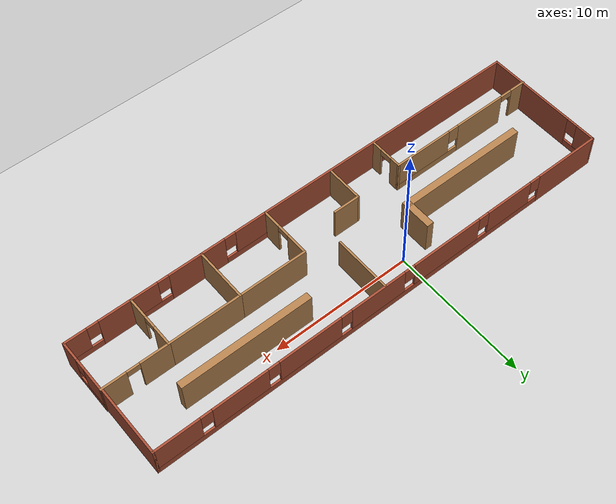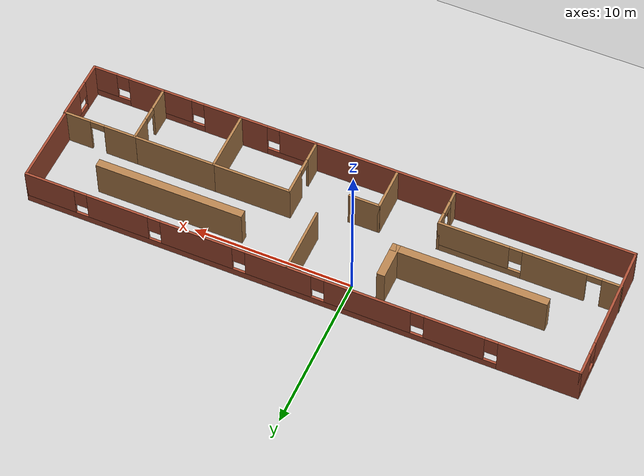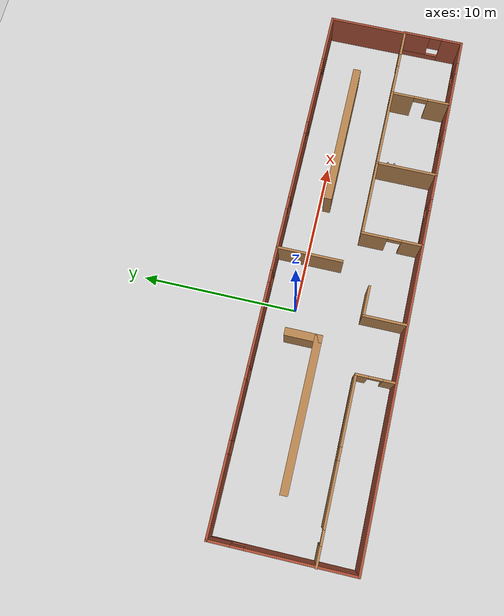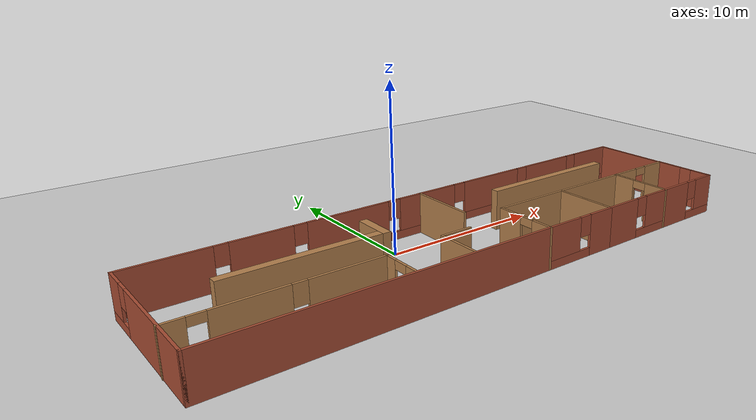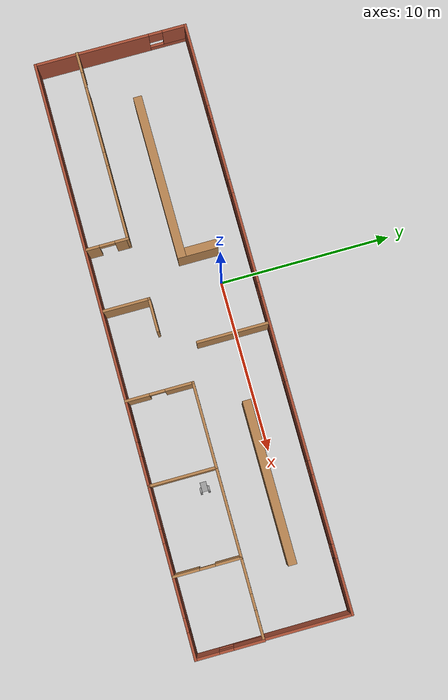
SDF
<sdf version="1.6">
 <world name="default">
  <model name="ground_plane">
   <static>1</static>
   <link name="link">
    <collision name="collision">
     <geometry><plane><normal>0 0 1</normal><size>100 100</size></plane></geometry>
     <surface>
      <contact><collide_bitmask>65535</collide_bitmask></contact>
      <friction><ode><mu>100</mu><mu2>50</mu2></ode></friction>
     </surface>
    </collision>
    <visual name="visual">
     <cast_shadows>0</cast_shadows>
     <geometry><plane><normal>0 0 1</normal><size>100 100</size></plane></geometry>
     <material>
      <script><uri>file://media/materials/scripts/gazebo.material</uri><name>Gazebo/Grey</name></script>
     </material>
    </visual>
   </link>
  </model>
  <model name="project_1_building">
   <pose>2.65425 -2.52692 0 0 -0 0</pose>
   <link name="Wall_103">
    <collision name="Wall_103_Collision">
     <geometry><box><size>20 0.15 2.5</size></box></geometry>
     <pose>0 0 1.25 0 -0 0</pose>
    </collision>
    <visual name="Wall_103_Visual">
     <pose>0 0 1.25 0 -0 0</pose>
     <geometry><box><size>20 0.15 2.5</size></box></geometry>
     <material>
      <script><uri>file://media/materials/scripts/gazebo.material</uri><name>Gazebo/Bricks</name></script>
      <ambient>1 1 1 1</ambient>
     </material>
     <meta><layer>0</layer></meta>
    </visual>
    <pose>-7.258 -4.425 0 0 -0 0</pose>
   </link>
   <link name="Wall_105">
    <pose>2.667 -2.5 0 0 -0 1.5708</pose>
    <visual name="Wall_105_Visual_0">
     <pose>-1.28923 0 1.25 0 -0 0</pose>
     <geometry><box><size>1.42155 0.15 2.5</size></box></geometry>
     <material>
      <script><uri>file://media/materials/scripts/gazebo.material</uri><name>Gazebo/Wood</name></script>
      <ambient>1 1 1 1</ambient>
     </material>
     <meta><layer>0</layer></meta>
    </visual>
    <collision name="Wall_105_Collision_0">
     <geometry><box><size>1.42155 0.15 2.5</size></box></geometry>
     <pose>-1.28923 0 1.25 0 -0 0</pose>
    </collision>
    <visual name="Wall_105_Visual_1">
     <pose>1.16077 0 1.25 0 -0 0</pose>
     <geometry><box><size>1.67845 0.15 2.5</size></box></geometry>
     <material>
      <script><uri>file://media/materials/scripts/gazebo.material</uri><name>Gazebo/Wood</name></script>
      <ambient>1 1 1 1</ambient>
     </material>
     <meta><layer>0</layer></meta>
    </visual>
    <collision name="Wall_105_Collision_1">
     <geometry><box><size>1.67845 0.15 2.5</size></box></geometry>
     <pose>1.16077 0 1.25 0 -0 0</pose>
    </collision>
    <visual name="Wall_105_Visual_2">
     <pose>-0.128452 0 2.25 0 -0 0</pose>
     <geometry><box><size>0.9 0.15 0.5</size></box></geometry>
     <material>
      <script><uri>file://media/materials/scripts/gazebo.material</uri><name>Gazebo/Wood</name></script>
      <ambient>1 1 1 1</ambient>
     </material>
     <meta><layer>0</layer></meta>
    </visual>
    <collision name="Wall_105_Collision_2">
     <geometry><box><size>0.9 0.15 0.5</size></box></geometry>
     <pose>-0.128452 0 2.25 0 -0 0</pose>
    </collision>
   </link>
   <link name="Wall_106">
    <collision name="Wall_106_Collision">
     <geometry><box><size>5 0.15 2.5</size></box></geometry>
     <pose>0 0 1.25 0 -0 0</pose>
    </collision>
    <visual name="Wall_106_Visual">
     <pose>0 0 1.25 0 -0 0</pose>
     <geometry><box><size>5 0.15 2.5</size></box></geometry>
     <material>
      <script><uri>file://media/materials/scripts/gazebo.material</uri><name>Gazebo/Wood</name></script>
      <ambient>1 1 1 1</ambient>
     </material>
     <meta><layer>0</layer></meta>
    </visual>
    <pose>5.092 -0.575 0 0 -0 0</pose>
   </link>
   <link name="Wall_107">
    <collision name="Wall_107_Collision">
     <geometry><box><size>4 0.15 2.5</size></box></geometry>
     <pose>0 0 1.25 0 -0 0</pose>
    </collision>
    <visual name="Wall_107_Visual">
     <pose>0 0 1.25 0 -0 0</pose>
     <geometry><box><size>4 0.15 2.5</size></box></geometry>
     <material>
      <script><uri>file://media/materials/scripts/gazebo.material</uri><name>Gazebo/Wood</name></script>
      <ambient>1 1 1 1</ambient>
     </material>
     <meta><layer>0</layer></meta>
    </visual>
    <pose>7.517 -2.5 0 0 -0 -1.5708</pose>
   </link>
   <link name="Wall_108">
    <pose>5.092 -4.425 0 0 -0 3.14159</pose>
    <visual name="Wall_108_Visual_0">
     <pose>-1.61317 0 1.25 0 -0 0</pose>
     <geometry><box><size>1.77367 0.15 2.5</size></box></geometry>
     <material>
      <script><uri>file://media/materials/scripts/gazebo.material</uri><name>Gazebo/Bricks</name></script>
      <ambient>1 1 1 1</ambient>
     </material>
     <meta><layer>0</layer></meta>
    </visual>
    <collision name="Wall_108_Collision_0">
     <geometry><box><size>1.77367 0.15 2.5</size></box></geometry>
     <pose>-1.61317 0 1.25 0 -0 0</pose>
    </collision>
    <visual name="Wall_108_Visual_1">
     <pose>0.886833 0 0.25 0 -0 0</pose>
     <geometry><box><size>3.22634 0.15 0.5</size></box></geometry>
     <material>
      <script><uri>file://media/materials/scripts/gazebo.material</uri><name>Gazebo/Bricks</name></script>
      <ambient>1 1 1 1</ambient>
     </material>
     <meta><layer>0</layer></meta>
    </visual>
    <collision name="Wall_108_Collision_1">
     <geometry><box><size>3.22634 0.15 0.5</size></box></geometry>
     <pose>0.886833 0 0.25 0 -0 0</pose>
    </collision>
    <visual name="Wall_108_Visual_2">
     <pose>1.28683 0 1.5 0 -0 0</pose>
     <geometry><box><size>2.42633 0.15 2</size></box></geometry>
     <material>
      <script><uri>file://media/materials/scripts/gazebo.material</uri><name>Gazebo/Bricks</name></script>
      <ambient>1 1 1 1</ambient>
     </material>
     <meta><layer>0</layer></meta>
    </visual>
    <collision name="Wall_108_Collision_2">
     <geometry><box><size>2.42633 0.15 2</size></box></geometry>
     <pose>1.28683 0 1.5 0 -0 0</pose>
    </collision>
    <visual name="Wall_108_Visual_3">
     <pose>-0.326335 0 1.9 0 -0 0</pose>
     <geometry><box><size>0.8 0.15 1.2</size></box></geometry>
     <material>
      <script><uri>file://media/materials/scripts/gazebo.material</uri><name>Gazebo/Bricks</name></script>
      <ambient>1 1 1 1</ambient>
     </material>
     <meta><layer>0</layer></meta>
    </visual>
    <collision name="Wall_108_Collision_3">
     <geometry><box><size>0.8 0.15 1.2</size></box></geometry>
     <pose>-0.326335 0 1.9 0 -0 0</pose>
    </collision>
   </link>
   <link name="Wall_110">
    <pose>10.067 -4.425 0 0 -0 0</pose>
    <visual name="Wall_110_Visual_0">
     <pose>-1.37302 0 1.25 0 -0 0</pose>
     <geometry><box><size>2.50397 0.15 2.5</size></box></geometry>
     <material>
      <script><uri>file://media/materials/scripts/gazebo.material</uri><name>Gazebo/Bricks</name></script>
      <ambient>1 1 1 1</ambient>
     </material>
     <meta><layer>0</layer></meta>
    </visual>
    <collision name="Wall_110_Collision_0">
     <geometry><box><size>2.50397 0.15 2.5</size></box></geometry>
     <pose>-1.37302 0 1.25 0 -0 0</pose>
    </collision>
    <visual name="Wall_110_Visual_1">
     <pose>1.25198 0 0.25 0 -0 0</pose>
     <geometry><box><size>2.74603 0.15 0.5</size></box></geometry>
     <material>
      <script><uri>file://media/materials/scripts/gazebo.material</uri><name>Gazebo/Bricks</name></script>
      <ambient>1 1 1 1</ambient>
     </material>
     <meta><layer>0</layer></meta>
    </visual>
    <collision name="Wall_110_Collision_1">
     <geometry><box><size>2.74603 0.15 0.5</size></box></geometry>
     <pose>1.25198 0 0.25 0 -0 0</pose>
    </collision>
    <visual name="Wall_110_Visual_2">
     <pose>1.65199 0 1.5 0 -0 0</pose>
     <geometry><box><size>1.94603 0.15 2</size></box></geometry>
     <material>
      <script><uri>file://media/materials/scripts/gazebo.material</uri><name>Gazebo/Bricks</name></script>
      <ambient>1 1 1 1</ambient>
     </material>
     <meta><layer>0</layer></meta>
    </visual>
    <collision name="Wall_110_Collision_2">
     <geometry><box><size>1.94603 0.15 2</size></box></geometry>
     <pose>1.65199 0 1.5 0 -0 0</pose>
    </collision>
    <visual name="Wall_110_Visual_3">
     <pose>0.27897 0 1.9 0 -0 0</pose>
     <geometry><box><size>0.8 0.15 1.2</size></box></geometry>
     <material>
      <script><uri>file://media/materials/scripts/gazebo.material</uri><name>Gazebo/Bricks</name></script>
      <ambient>1 1 1 1</ambient>
     </material>
     <meta><layer>0</layer></meta>
    </visual>
    <collision name="Wall_110_Collision_3">
     <geometry><box><size>0.8 0.15 1.2</size></box></geometry>
     <pose>0.27897 0 1.9 0 -0 0</pose>
    </collision>
   </link>
   <link name="Wall_111">
    <pose>12.617 -2.5 0 0 -0 1.5708</pose>
    <visual name="Wall_111_Visual_0">
     <pose>-1.21927 0 1.25 0 -0 0</pose>
     <geometry><box><size>1.56147 0.15 2.5</size></box></geometry>
     <material>
      <script><uri>file://media/materials/scripts/gazebo.material</uri><name>Gazebo/Wood</name></script>
      <ambient>1 1 1 1</ambient>
     </material>
     <meta><layer>0</layer></meta>
    </visual>
    <collision name="Wall_111_Collision_0">
     <geometry><box><size>1.56147 0.15 2.5</size></box></geometry>
     <pose>-1.21927 0 1.25 0 -0 0</pose>
    </collision>
    <visual name="Wall_111_Visual_1">
     <pose>1.23073 0 1.25 0 -0 0</pose>
     <geometry><box><size>1.53853 0.15 2.5</size></box></geometry>
     <material>
      <script><uri>file://media/materials/scripts/gazebo.material</uri><name>Gazebo/Wood</name></script>
      <ambient>1 1 1 1</ambient>
     </material>
     <meta><layer>0</layer></meta>
    </visual>
    <collision name="Wall_111_Collision_1">
     <geometry><box><size>1.53853 0.15 2.5</size></box></geometry>
     <pose>1.23073 0 1.25 0 -0 0</pose>
    </collision>
    <visual name="Wall_111_Visual_2">
     <pose>0.011469 0 2.25 0 -0 0</pose>
     <geometry><box><size>0.9 0.15 0.5</size></box></geometry>
     <material>
      <script><uri>file://media/materials/scripts/gazebo.material</uri><name>Gazebo/Wood</name></script>
      <ambient>1 1 1 1</ambient>
     </material>
     <meta><layer>0</layer></meta>
    </visual>
    <collision name="Wall_111_Collision_2">
     <geometry><box><size>0.9 0.15 0.5</size></box></geometry>
     <pose>0.011469 0 2.25 0 -0 0</pose>
    </collision>
   </link>
   <link name="Wall_112">
    <collision name="Wall_112_Collision">
     <geometry><box><size>5.25 0.15 2.5</size></box></geometry>
     <pose>0 0 1.25 0 -0 0</pose>
    </collision>
    <visual name="Wall_112_Visual">
     <pose>0 0 1.25 0 -0 0</pose>
     <geometry><box><size>5.25 0.15 2.5</size></box></geometry>
     <material>
      <script><uri>file://media/materials/scripts/gazebo.material</uri><name>Gazebo/Wood</name></script>
      <ambient>1 1 1 1</ambient>
     </material>
     <meta><layer>0</layer></meta>
    </visual>
    <pose>10.067 -0.575 0 0 -0 3.14159</pose>
   </link>
   <link name="Wall_114">
    <pose>14.917 -4.425 0 0 -0 0</pose>
    <visual name="Wall_114_Visual_0">
     <pose>-1.19399 0 1.25 0 -0 0</pose>
     <geometry><box><size>2.36202 0.15 2.5</size></box></geometry>
     <material>
      <script><uri>file://media/materials/scripts/gazebo.material</uri><name>Gazebo/Bricks</name></script>
      <ambient>1 1 1 1</ambient>
     </material>
     <meta><layer>0</layer></meta>
    </visual>
    <collision name="Wall_114_Collision_0">
     <geometry><box><size>2.36202 0.15 2.5</size></box></geometry>
     <pose>-1.19399 0 1.25 0 -0 0</pose>
    </collision>
    <visual name="Wall_114_Visual_1">
     <pose>1.18101 0 0.25 0 -0 0</pose>
     <geometry><box><size>2.38798 0.15 0.5</size></box></geometry>
     <material>
      <script><uri>file://media/materials/scripts/gazebo.material</uri><name>Gazebo/Bricks</name></script>
      <ambient>1 1 1 1</ambient>
     </material>
     <meta><layer>0</layer></meta>
    </visual>
    <collision name="Wall_114_Collision_1">
     <geometry><box><size>2.38798 0.15 0.5</size></box></geometry>
     <pose>1.18101 0 0.25 0 -0 0</pose>
    </collision>
    <visual name="Wall_114_Visual_2">
     <pose>1.58101 0 1.5 0 -0 0</pose>
     <geometry><box><size>1.58798 0.15 2</size></box></geometry>
     <material>
      <script><uri>file://media/materials/scripts/gazebo.material</uri><name>Gazebo/Bricks</name></script>
      <ambient>1 1 1 1</ambient>
     </material>
     <meta><layer>0</layer></meta>
    </visual>
    <collision name="Wall_114_Collision_2">
     <geometry><box><size>1.58798 0.15 2</size></box></geometry>
     <pose>1.58101 0 1.5 0 -0 0</pose>
    </collision>
    <visual name="Wall_114_Visual_3">
     <pose>0.387023 0 1.9 0 -0 0</pose>
     <geometry><box><size>0.8 0.15 1.2</size></box></geometry>
     <material>
      <script><uri>file://media/materials/scripts/gazebo.material</uri><name>Gazebo/Bricks</name></script>
      <ambient>1 1 1 1</ambient>
     </material>
     <meta><layer>0</layer></meta>
    </visual>
    <collision name="Wall_114_Collision_3">
     <geometry><box><size>0.8 0.15 1.2</size></box></geometry>
     <pose>0.387023 0 1.9 0 -0 0</pose>
    </collision>
   </link>
   <link name="Wall_115">
    <pose>17.217 -2.5 0 0 -0 1.5708</pose>
    <visual name="Wall_115_Visual_0">
     <pose>-1.28817 0 1.25 0 -0 0</pose>
     <geometry><box><size>1.42366 0.15 2.5</size></box></geometry>
     <material>
      <script><uri>file://media/materials/scripts/gazebo.material</uri><name>Gazebo/Bricks</name></script>
      <ambient>1 1 1 1</ambient>
     </material>
     <meta><layer>0</layer></meta>
    </visual>
    <collision name="Wall_115_Collision_0">
     <geometry><box><size>1.42366 0.15 2.5</size></box></geometry>
     <pose>-1.28817 0 1.25 0 -0 0</pose>
    </collision>
    <visual name="Wall_115_Visual_1">
     <pose>0.711831 0 0.25 0 -0 0</pose>
     <geometry><box><size>2.57634 0.15 0.5</size></box></geometry>
     <material>
      <script><uri>file://media/materials/scripts/gazebo.material</uri><name>Gazebo/Bricks</name></script>
      <ambient>1 1 1 1</ambient>
     </material>
     <meta><layer>0</layer></meta>
    </visual>
    <collision name="Wall_115_Collision_1">
     <geometry><box><size>2.57634 0.15 0.5</size></box></geometry>
     <pose>0.711831 0 0.25 0 -0 0</pose>
    </collision>
    <visual name="Wall_115_Visual_2">
     <pose>1.11183 0 1.5 0 -0 0</pose>
     <geometry><box><size>1.77634 0.15 2</size></box></geometry>
     <material>
      <script><uri>file://media/materials/scripts/gazebo.material</uri><name>Gazebo/Bricks</name></script>
      <ambient>1 1 1 1</ambient>
     </material>
     <meta><layer>0</layer></meta>
    </visual>
    <collision name="Wall_115_Collision_2">
     <geometry><box><size>1.77634 0.15 2</size></box></geometry>
     <pose>1.11183 0 1.5 0 -0 0</pose>
    </collision>
    <visual name="Wall_115_Visual_3">
     <pose>-0.176337 0 1.9 0 -0 0</pose>
     <geometry><box><size>0.8 0.15 1.2</size></box></geometry>
     <material>
      <script><uri>file://media/materials/scripts/gazebo.material</uri><name>Gazebo/Bricks</name></script>
      <ambient>1 1 1 1</ambient>
     </material>
     <meta><layer>0</layer></meta>
    </visual>
    <collision name="Wall_115_Collision_3">
     <geometry><box><size>0.8 0.15 1.2</size></box></geometry>
     <pose>-0.176337 0 1.9 0 -0 0</pose>
    </collision>
   </link>
   <link name="Wall_116">
    <pose>14.917 -0.575 0 0 -0 3.14159</pose>
    <visual name="Wall_116_Visual_0">
     <pose>-1.48883 0 1.25 0 -0 0</pose>
     <geometry><box><size>1.77234 0.15 2.5</size></box></geometry>
     <material>
      <script><uri>file://media/materials/scripts/gazebo.material</uri><name>Gazebo/Wood</name></script>
      <ambient>1 1 1 1</ambient>
     </material>
     <meta><layer>0</layer></meta>
    </visual>
    <collision name="Wall_116_Collision_0">
     <geometry><box><size>1.77234 0.15 2.5</size></box></geometry>
     <pose>-1.48883 0 1.25 0 -0 0</pose>
    </collision>
    <visual name="Wall_116_Visual_1">
     <pose>1.33617 0 1.25 0 -0 0</pose>
     <geometry><box><size>2.07766 0.15 2.5</size></box></geometry>
     <material>
      <script><uri>file://media/materials/scripts/gazebo.material</uri><name>Gazebo/Wood</name></script>
      <ambient>1 1 1 1</ambient>
     </material>
     <meta><layer>0</layer></meta>
    </visual>
    <collision name="Wall_116_Collision_1">
     <geometry><box><size>2.07766 0.15 2.5</size></box></geometry>
     <pose>1.33617 0 1.25 0 -0 0</pose>
    </collision>
    <visual name="Wall_116_Visual_2">
     <pose>-0.152657 0 2.25 0 -0 0</pose>
     <geometry><box><size>0.9 0.15 0.5</size></box></geometry>
     <material>
      <script><uri>file://media/materials/scripts/gazebo.material</uri><name>Gazebo/Wood</name></script>
      <ambient>1 1 1 1</ambient>
     </material>
     <meta><layer>0</layer></meta>
    </visual>
    <collision name="Wall_116_Collision_2">
     <geometry><box><size>0.9 0.15 0.5</size></box></geometry>
     <pose>-0.152657 0 2.25 0 -0 0</pose>
    </collision>
   </link>
   <link name="Wall_119">
    <pose>-17.183 -0 0 0 -0 1.5708</pose>
    <visual name="Wall_119_Visual_0">
     <pose>-1.12664 0 1.25 0 -0 0</pose>
     <geometry><box><size>6.74672 0.15 2.5</size></box></geometry>
     <material>
      <script><uri>file://media/materials/scripts/gazebo.material</uri><name>Gazebo/Bricks</name></script>
      <ambient>1 1 1 1</ambient>
     </material>
     <meta><layer>0</layer></meta>
    </visual>
    <collision name="Wall_119_Collision_0">
     <geometry><box><size>6.74672 0.15 2.5</size></box></geometry>
     <pose>-1.12664 0 1.25 0 -0 0</pose>
    </collision>
    <visual name="Wall_119_Visual_1">
     <pose>3.37336 0 0.25 0 -0 0</pose>
     <geometry><box><size>2.25327 0.15 0.5</size></box></geometry>
     <material>
      <script><uri>file://media/materials/scripts/gazebo.material</uri><name>Gazebo/Bricks</name></script>
      <ambient>1 1 1 1</ambient>
     </material>
     <meta><layer>0</layer></meta>
    </visual>
    <collision name="Wall_119_Collision_1">
     <geometry><box><size>2.25327 0.15 0.5</size></box></geometry>
     <pose>3.37336 0 0.25 0 -0 0</pose>
    </collision>
    <visual name="Wall_119_Visual_2">
     <pose>3.77336 0 1.5 0 -0 0</pose>
     <geometry><box><size>1.45328 0.15 2</size></box></geometry>
     <material>
      <script><uri>file://media/materials/scripts/gazebo.material</uri><name>Gazebo/Bricks</name></script>
      <ambient>1 1 1 1</ambient>
     </material>
     <meta><layer>0</layer></meta>
    </visual>
    <collision name="Wall_119_Collision_2">
     <geometry><box><size>1.45328 0.15 2</size></box></geometry>
     <pose>3.77336 0 1.5 0 -0 0</pose>
    </collision>
    <visual name="Wall_119_Visual_3">
     <pose>2.64672 0 1.9 0 -0 0</pose>
     <geometry><box><size>0.8 0.15 1.2</size></box></geometry>
     <material>
      <script><uri>file://media/materials/scripts/gazebo.material</uri><name>Gazebo/Bricks</name></script>
      <ambient>1 1 1 1</ambient>
     </material>
     <meta><layer>0</layer></meta>
    </visual>
    <collision name="Wall_119_Collision_3">
     <geometry><box><size>0.8 0.15 1.2</size></box></geometry>
     <pose>2.64672 0 1.9 0 -0 0</pose>
    </collision>
   </link>
   <link name="Wall_120">
    <pose>-0.008001 4.425 0 0 -0 0</pose>
    <visual name="Wall_120_Visual_0">
     <pose>-14.7732 0 1.25 0 -0 0</pose>
     <geometry><box><size>4.95359 0.15 2.5</size></box></geometry>
     <material>
      <script><uri>file://media/materials/scripts/gazebo.material</uri><name>Gazebo/Bricks</name></script>
      <ambient>1 1 1 1</ambient>
     </material>
     <meta><layer>0</layer></meta>
    </visual>
    <collision name="Wall_120_Collision_0">
     <geometry><box><size>4.95359 0.15 2.5</size></box></geometry>
     <pose>-14.7732 0 1.25 0 -0 0</pose>
    </collision>
    <visual name="Wall_120_Visual_1">
     <pose>2.4768 0 0.25 0 -0 0</pose>
     <geometry><box><size>29.5464 0.15 0.5</size></box></geometry>
     <material>
      <script><uri>file://media/materials/scripts/gazebo.material</uri><name>Gazebo/Bricks</name></script>
      <ambient>1 1 1 1</ambient>
     </material>
     <meta><layer>0</layer></meta>
    </visual>
    <collision name="Wall_120_Collision_1">
     <geometry><box><size>29.5464 0.15 0.5</size></box></geometry>
     <pose>2.4768 0 0.25 0 -0 0</pose>
    </collision>
    <visual name="Wall_120_Visual_2">
     <pose>-9.67517 0 1.5 0 -0 0</pose>
     <geometry><box><size>3.64248 0.15 2</size></box></geometry>
     <material>
      <script><uri>file://media/materials/scripts/gazebo.material</uri><name>Gazebo/Bricks</name></script>
      <ambient>1 1 1 1</ambient>
     </material>
     <meta><layer>0</layer></meta>
    </visual>
    <collision name="Wall_120_Collision_2">
     <geometry><box><size>3.64248 0.15 2</size></box></geometry>
     <pose>-9.67517 0 1.5 0 -0 0</pose>
    </collision>
    <visual name="Wall_120_Visual_3">
     <pose>-4.40535 0 1.5 0 -0 0</pose>
     <geometry><box><size>5.29716 0.15 2</size></box></geometry>
     <material>
      <script><uri>file://media/materials/scripts/gazebo.material</uri><name>Gazebo/Bricks</name></script>
      <ambient>1 1 1 1</ambient>
     </material>
     <meta><layer>0</layer></meta>
    </visual>
    <collision name="Wall_120_Collision_3">
     <geometry><box><size>5.29716 0.15 2</size></box></geometry>
     <pose>-4.40535 0 1.5 0 -0 0</pose>
    </collision>
    <visual name="Wall_120_Visual_4">
     <pose>1.10705 0 1.5 0 -0 0</pose>
     <geometry><box><size>4.12763 0.15 2</size></box></geometry>
     <material>
      <script><uri>file://media/materials/scripts/gazebo.material</uri><name>Gazebo/Bricks</name></script>
      <ambient>1 1 1 1</ambient>
     </material>
     <meta><layer>0</layer></meta>
    </visual>
    <collision name="Wall_120_Collision_4">
     <geometry><box><size>4.12763 0.15 2</size></box></geometry>
     <pose>1.10705 0 1.5 0 -0 0</pose>
    </collision>
    <visual name="Wall_120_Visual_5">
     <pose>6.24761 0 1.5 0 -0 0</pose>
     <geometry><box><size>4.55348 0.15 2</size></box></geometry>
     <material>
      <script><uri>file://media/materials/scripts/gazebo.material</uri><name>Gazebo/Bricks</name></script>
      <ambient>1 1 1 1</ambient>
     </material>
     <meta><layer>0</layer></meta>
    </visual>
    <collision name="Wall_120_Collision_5">
     <geometry><box><size>4.55348 0.15 2</size></box></geometry>
     <pose>6.24761 0 1.5 0 -0 0</pose>
    </collision>
    <visual name="Wall_120_Visual_6">
     <pose>11.2817 0 1.5 0 -0 0</pose>
     <geometry><box><size>3.91471 0.15 2</size></box></geometry>
     <material>
      <script><uri>file://media/materials/scripts/gazebo.material</uri><name>Gazebo/Bricks</name></script>
      <ambient>1 1 1 1</ambient>
     </material>
     <meta><layer>0</layer></meta>
    </visual>
    <collision name="Wall_120_Collision_6">
     <geometry><box><size>3.91471 0.15 2</size></box></geometry>
     <pose>11.2817 0 1.5 0 -0 0</pose>
    </collision>
    <visual name="Wall_120_Visual_7">
     <pose>15.6445 0 1.5 0 -0 0</pose>
     <geometry><box><size>3.21094 0.15 2</size></box></geometry>
     <material>
      <script><uri>file://media/materials/scripts/gazebo.material</uri><name>Gazebo/Bricks</name></script>
      <ambient>1 1 1 1</ambient>
     </material>
     <meta><layer>0</layer></meta>
    </visual>
    <collision name="Wall_120_Collision_7">
     <geometry><box><size>3.21094 0.15 2</size></box></geometry>
     <pose>15.6445 0 1.5 0 -0 0</pose>
    </collision>
    <visual name="Wall_120_Visual_8">
     <pose>-11.8964 0 1.9 0 -0 0</pose>
     <geometry><box><size>0.8 0.15 1.2</size></box></geometry>
     <material>
      <script><uri>file://media/materials/scripts/gazebo.material</uri><name>Gazebo/Bricks</name></script>
      <ambient>1 1 1 1</ambient>
     </material>
     <meta><layer>0</layer></meta>
    </visual>
    <collision name="Wall_120_Collision_8">
     <geometry><box><size>0.8 0.15 1.2</size></box></geometry>
     <pose>-11.8964 0 1.9 0 -0 0</pose>
    </collision>
    <visual name="Wall_120_Visual_9">
     <pose>-7.45393 0 1.9 0 -0 0</pose>
     <geometry><box><size>0.8 0.15 1.2</size></box></geometry>
     <material>
      <script><uri>file://media/materials/scripts/gazebo.material</uri><name>Gazebo/Bricks</name></script>
      <ambient>1 1 1 1</ambient>
     </material>
     <meta><layer>0</layer></meta>
    </visual>
    <collision name="Wall_120_Collision_9">
     <geometry><box><size>0.8 0.15 1.2</size></box></geometry>
     <pose>-7.45393 0 1.9 0 -0 0</pose>
    </collision>
    <visual name="Wall_120_Visual_10">
     <pose>-1.35677 0 1.9 0 -0 0</pose>
     <geometry><box><size>0.8 0.15 1.2</size></box></geometry>
     <material>
      <script><uri>file://media/materials/scripts/gazebo.material</uri><name>Gazebo/Bricks</name></script>
      <ambient>1 1 1 1</ambient>
     </material>
     <meta><layer>0</layer></meta>
    </visual>
    <collision name="Wall_120_Collision_10">
     <geometry><box><size>0.8 0.15 1.2</size></box></geometry>
     <pose>-1.35677 0 1.9 0 -0 0</pose>
    </collision>
    <visual name="Wall_120_Visual_11">
     <pose>3.57087 0 1.9 0 -0 0</pose>
     <geometry><box><size>0.8 0.15 1.2</size></box></geometry>
     <material>
      <script><uri>file://media/materials/scripts/gazebo.material</uri><name>Gazebo/Bricks</name></script>
      <ambient>1 1 1 1</ambient>
     </material>
     <meta><layer>0</layer></meta>
    </visual>
    <collision name="Wall_120_Collision_11">
     <geometry><box><size>0.8 0.15 1.2</size></box></geometry>
     <pose>3.57087 0 1.9 0 -0 0</pose>
    </collision>
    <visual name="Wall_120_Visual_12">
     <pose>8.92435 0 1.9 0 -0 0</pose>
     <geometry><box><size>0.8 0.15 1.2</size></box></geometry>
     <material>
      <script><uri>file://media/materials/scripts/gazebo.material</uri><name>Gazebo/Bricks</name></script>
      <ambient>1 1 1 1</ambient>
     </material>
     <meta><layer>0</layer></meta>
    </visual>
    <collision name="Wall_120_Collision_12">
     <geometry><box><size>0.8 0.15 1.2</size></box></geometry>
     <pose>8.92435 0 1.9 0 -0 0</pose>
    </collision>
    <visual name="Wall_120_Visual_13">
     <pose>13.6391 0 1.9 0 -0 0</pose>
     <geometry><box><size>0.8 0.15 1.2</size></box></geometry>
     <material>
      <script><uri>file://media/materials/scripts/gazebo.material</uri><name>Gazebo/Bricks</name></script>
      <ambient>1 1 1 1</ambient>
     </material>
     <meta><layer>0</layer></meta>
    </visual>
    <collision name="Wall_120_Collision_13">
     <geometry><box><size>0.8 0.15 1.2</size></box></geometry>
     <pose>13.6391 0 1.9 0 -0 0</pose>
    </collision>
   </link>
   <link name="Wall_121">
    <collision name="Wall_121_Collision">
     <geometry><box><size>5 0.15 2.5</size></box></geometry>
     <pose>0 0 1.25 0 -0 0</pose>
    </collision>
    <visual name="Wall_121_Visual">
     <pose>0 0 1.25 0 -0 0</pose>
     <geometry><box><size>5 0.15 2.5</size></box></geometry>
     <material>
      <script><uri>file://media/materials/scripts/gazebo.material</uri><name>Gazebo/Bricks</name></script>
      <ambient>1 1 1 1</ambient>
     </material>
     <meta><layer>0</layer></meta>
    </visual>
    <pose>17.167 2 0 0 -0 -1.5708</pose>
   </link>
   <link name="Wall_123">
    <collision name="Wall_123_Collision">
     <geometry><box><size>9.59951 0.5 2.5</size></box></geometry>
     <pose>0 0 1.25 0 -0 0</pose>
    </collision>
    <visual name="Wall_123_Visual">
     <pose>0 0 1.25 0 -0 0</pose>
     <geometry><box><size>9.59951 0.5 2.5</size></box></geometry>
     <material>
      <script><uri>file://media/materials/scripts/gazebo.material</uri><name>Gazebo/Wood</name></script>
      <ambient>1 1 1 1</ambient>
     </material>
     <meta><layer>0</layer></meta>
    </visual>
    <pose>-9.06356 0.694511 0 0 -0 0</pose>
   </link>
   <link name="Wall_124">
    <collision name="Wall_124_Collision">
     <geometry><box><size>2.35015 0.5 2.5</size></box></geometry>
     <pose>0 0 1.25 0 -0 0</pose>
    </collision>
    <visual name="Wall_124_Visual">
     <pose>0 0 1.25 0 -0 0</pose>
     <geometry><box><size>2.35015 0.5 2.5</size></box></geometry>
     <material>
      <script><uri>file://media/materials/scripts/gazebo.material</uri><name>Gazebo/Wood</name></script>
      <ambient>1 1 1 1</ambient>
     </material>
     <meta><layer>0</layer></meta>
    </visual>
    <pose>-4.51356 1.61951 0 0 -0 1.5708</pose>
   </link>
   <link name="Wall_126">
    <collision name="Wall_126_Collision">
     <geometry><box><size>9.35014 0.5 2.5</size></box></geometry>
     <pose>0 0 1.25 0 -0 0</pose>
    </collision>
    <visual name="Wall_126_Visual">
     <pose>0 0 1.25 0 -0 0</pose>
     <geometry><box><size>9.35014 0.5 2.5</size></box></geometry>
     <material>
      <script><uri>file://media/materials/scripts/gazebo.material</uri><name>Gazebo/Wood</name></script>
      <ambient>1 1 1 1</ambient>
     </material>
     <meta><layer>0</layer></meta>
    </visual>
    <pose>9.07044 2.02351 0 0 -0 0</pose>
   </link>
   <link name="Wall_129">
    <pose>-11.667 -1.96383 0 0 -0 0</pose>
    <visual name="Wall_129_Visual_0">
     <pose>-5.00796 0 1.25 0 -0 0</pose>
     <geometry><box><size>1.23409 0.15 2.5</size></box></geometry>
     <material>
      <script><uri>file://media/materials/scripts/gazebo.material</uri><name>Gazebo/Wood</name></script>
      <ambient>1 1 1 1</ambient>
     </material>
     <meta><layer>0</layer></meta>
    </visual>
    <collision name="Wall_129_Collision_0">
     <geometry><box><size>1.23409 0.15 2.5</size></box></geometry>
     <pose>-5.00796 0 1.25 0 -0 0</pose>
    </collision>
    <visual name="Wall_129_Visual_1">
     <pose>-1.53947 0 1.25 0 -0 0</pose>
     <geometry><box><size>3.90289 0.15 2.5</size></box></geometry>
     <material>
      <script><uri>file://media/materials/scripts/gazebo.material</uri><name>Gazebo/Wood</name></script>
      <ambient>1 1 1 1</ambient>
     </material>
     <meta><layer>0</layer></meta>
    </visual>
    <collision name="Wall_129_Collision_1">
     <geometry><box><size>3.90289 0.15 2.5</size></box></geometry>
     <pose>-1.53947 0 1.25 0 -0 0</pose>
    </collision>
    <visual name="Wall_129_Visual_2">
     <pose>3.01849 0 0.25 0 -0 0</pose>
     <geometry><box><size>5.21303 0.15 0.5</size></box></geometry>
     <material>
      <script><uri>file://media/materials/scripts/gazebo.material</uri><name>Gazebo/Wood</name></script>
      <ambient>1 1 1 1</ambient>
     </material>
     <meta><layer>0</layer></meta>
    </visual>
    <collision name="Wall_129_Collision_2">
     <geometry><box><size>5.21303 0.15 0.5</size></box></geometry>
     <pose>3.01849 0 0.25 0 -0 0</pose>
    </collision>
    <visual name="Wall_129_Visual_3">
     <pose>3.41849 0 1.5 0 -0 0</pose>
     <geometry><box><size>4.41303 0.15 2</size></box></geometry>
     <material>
      <script><uri>file://media/materials/scripts/gazebo.material</uri><name>Gazebo/Wood</name></script>
      <ambient>1 1 1 1</ambient>
     </material>
     <meta><layer>0</layer></meta>
    </visual>
    <collision name="Wall_129_Collision_3">
     <geometry><box><size>4.41303 0.15 2</size></box></geometry>
     <pose>3.41849 0 1.5 0 -0 0</pose>
    </collision>
    <visual name="Wall_129_Visual_4">
     <pose>0.811972 0 1.9 0 -0 0</pose>
     <geometry><box><size>0.8 0.15 1.2</size></box></geometry>
     <material>
      <script><uri>file://media/materials/scripts/gazebo.material</uri><name>Gazebo/Wood</name></script>
      <ambient>1 1 1 1</ambient>
     </material>
     <meta><layer>0</layer></meta>
    </visual>
    <collision name="Wall_129_Collision_4">
     <geometry><box><size>0.8 0.15 1.2</size></box></geometry>
     <pose>0.811972 0 1.9 0 -0 0</pose>
    </collision>
    <visual name="Wall_129_Visual_5">
     <pose>-3.94091 0 2.25 0 -0 0</pose>
     <geometry><box><size>0.9 0.15 0.5</size></box></geometry>
     <material>
      <script><uri>file://media/materials/scripts/gazebo.material</uri><name>Gazebo/Wood</name></script>
      <ambient>1 1 1 1</ambient>
     </material>
     <meta><layer>0</layer></meta>
    </visual>
    <collision name="Wall_129_Collision_5">
     <geometry><box><size>0.9 0.15 0.5</size></box></geometry>
     <pose>-3.94091 0 2.25 0 -0 0</pose>
    </collision>
   </link>
   <link name="Wall_130">
    <pose>-6.117 -3.13883 0 0 -0 -1.5708</pose>
    <visual name="Wall_130_Visual_0">
     <pose>-0.842838 0 1.25 0 -0 0</pose>
     <geometry><box><size>0.814324 0.15 2.5</size></box></geometry>
     <material>
      <script><uri>file://media/materials/scripts/gazebo.material</uri><name>Gazebo/Wood</name></script>
      <ambient>1 1 1 1</ambient>
     </material>
     <meta><layer>0</layer></meta>
    </visual>
    <collision name="Wall_130_Collision_0">
     <geometry><box><size>0.814324 0.15 2.5</size></box></geometry>
     <pose>-0.842838 0 1.25 0 -0 0</pose>
    </collision>
    <visual name="Wall_130_Visual_1">
     <pose>0.857162 0 1.25 0 -0 0</pose>
     <geometry><box><size>0.785676 0.15 2.5</size></box></geometry>
     <material>
      <script><uri>file://media/materials/scripts/gazebo.material</uri><name>Gazebo/Wood</name></script>
      <ambient>1 1 1 1</ambient>
     </material>
     <meta><layer>0</layer></meta>
    </visual>
    <collision name="Wall_130_Collision_1">
     <geometry><box><size>0.785676 0.15 2.5</size></box></geometry>
     <pose>0.857162 0 1.25 0 -0 0</pose>
    </collision>
    <visual name="Wall_130_Visual_2">
     <pose>0.014324 0 2.25 0 -0 0</pose>
     <geometry><box><size>0.9 0.15 0.5</size></box></geometry>
     <material>
      <script><uri>file://media/materials/scripts/gazebo.material</uri><name>Gazebo/Wood</name></script>
      <ambient>1 1 1 1</ambient>
     </material>
     <meta><layer>0</layer></meta>
    </visual>
    <collision name="Wall_130_Collision_2">
     <geometry><box><size>0.9 0.15 0.5</size></box></geometry>
     <pose>0.014324 0 2.25 0 -0 0</pose>
    </collision>
   </link>
   <link name="Wall_132">
    <collision name="Wall_132_Collision">
     <geometry><box><size>4.25 0.15 2.5</size></box></geometry>
     <pose>0 0 1.25 0 -0 0</pose>
    </collision>
    <visual name="Wall_132_Visual">
     <pose>0 0 1.25 0 -0 0</pose>
     <geometry><box><size>4.25 0.15 2.5</size></box></geometry>
     <material>
      <script><uri>file://media/materials/scripts/gazebo.material</uri><name>Gazebo/Wood</name></script>
      <ambient>1 1 1 1</ambient>
     </material>
     <meta><layer>0</layer></meta>
    </visual>
    <pose>0.56643 2.32665 0 0 -0 -1.5708</pose>
   </link>
   <link name="Wall_134">
    <collision name="Wall_134_Collision">
     <geometry><box><size>2.75 0.15 2.5</size></box></geometry>
     <pose>0 0 1.25 0 -0 0</pose>
    </collision>
    <visual name="Wall_134_Visual">
     <pose>0 0 1.25 0 -0 0</pose>
     <geometry><box><size>2.75 0.15 2.5</size></box></geometry>
     <material>
      <script><uri>file://media/materials/scripts/gazebo.material</uri><name>Gazebo/Wood</name></script>
      <ambient>1 1 1 1</ambient>
     </material>
     <meta><layer>0</layer></meta>
    </visual>
    <pose>-2.51182 -2.99842 0 0 -0 1.5708</pose>
   </link>
   <link name="Wall_135">
    <collision name="Wall_135_Collision">
     <geometry><box><size>2 0.15 2.5</size></box></geometry>
     <pose>0 0 1.25 0 -0 0</pose>
    </collision>
    <visual name="Wall_135_Visual">
     <pose>0 0 1.25 0 -0 0</pose>
     <geometry><box><size>2 0.15 2.5</size></box></geometry>
     <material>
      <script><uri>file://media/materials/scripts/gazebo.material</uri><name>Gazebo/Wood</name></script>
      <ambient>1 1 1 1</ambient>
     </material>
     <meta><layer>0</layer></meta>
    </visual>
    <pose>-1.58682 -1.69842 0 0 -0 0</pose>
   </link>
   <static>1</static>
  </model>
  <model name="project_1_model_0">
   <link name="link_0">
    <inertial>
     <mass>1</mass>
     <inertia>
      <ixx>0.166667</ixx>
      <ixy>0</ixy>
      <ixz>0</ixz>
      <iyy>0.166667</iyy>
      <iyz>0</iyz>
      <izz>0.166667</izz>
     </inertia>
    </inertial>
    <pose>-0.03625 0.03125 0.025 0 -0 0</pose>
    <visual name="visual">
     <geometry><box><size>0.55 0.35 0.2</size></box></geometry>
     <material>
      <lighting>1</lighting>
      <script><uri>file://media/materials/scripts/gazebo.material</uri><name>Gazebo/Grey</name></script>
      <shader type="vertex"><normal_map>__default__</normal_map></shader>
      <ambient>0.3 0.3 0.3 1</ambient>
      <diffuse>0.7 0.7 0.7 1</diffuse>
      <specular>0.01 0.01 0.01 1</specular>
      <emissive>0 0 0 1</emissive>
     </material>
    </visual>
    <collision name="collision">
     <pose>-0.01 0 0 0 -0 0</pose>
     <geometry><box><size>0.55 0.35 0.2</size></box></geometry>
     <surface>
      <friction>
       <ode><mu>1</mu><mu2>1</mu2><fdir1>0 0 0</fdir1><slip1>0</slip1><slip2>0</slip2></ode>
       <torsional>
        <coefficient>1</coefficient>
        <patch_radius>0</patch_radius>
        <surface_radius>0</surface_radius>
        <use_patch_radius>1</use_patch_radius>
        <ode><slip>0</slip></ode>
       </torsional>
      </friction>
      <bounce><restitution_coefficient>0</restitution_coefficient><threshold>1e+06</threshold></bounce>
      <contact>
       <collide_without_contact>0</collide_without_contact>
       <collide_without_contact_bitmask>1</collide_without_contact_bitmask>
       <collide_bitmask>1</collide_bitmask>
       <ode>
        <soft_cfm>0</soft_cfm>
        <soft_erp>0.2</soft_erp>
        <kp>1e+13</kp>
        <kd>1</kd>
        <max_vel>0.01</max_vel>
        <min_depth>0</min_depth>
       </ode>
       <bullet>
        <split_impulse>1</split_impulse>
        <split_impulse_penetration_threshold>-0.01</split_impulse_penetration_threshold>
        <soft_cfm>0</soft_cfm>
        <soft_erp>0.2</soft_erp>
        <kp>1e+13</kp>
        <kd>1</kd>
       </bullet>
      </contact>
     </surface>
    </collision>
   </link>
   <link name="link_1">
    <inertial>
     <mass>1</mass>
     <inertia><ixx>0.145833</ixx><ixy>0</ixy><ixz>0</ixz><iyy>0.145833</iyy><iyz>0</iyz><izz>0.125</izz></inertia>
    </inertial>
    <pose>0.16375 0.256269 -0.175 0 -0 0</pose>
    <visual name="visual">
     <pose>0 0 0.2 1.5707 -0 0</pose>
     <geometry><cylinder><radius>0.2</radius><length>0.1</length></cylinder></geometry>
     <material>
      <lighting>1</lighting>
      <script><uri>file://media/materials/scripts/gazebo.material</uri><name>Gazebo/Grey</name></script>
      <shader type="vertex"><normal_map>__default__</normal_map></shader>
      <ambient>0.3 0.3 0.3 1</ambient>
      <diffuse>0.7 0.7 0.7 1</diffuse>
      <specular>0.01 0.01 0.01 1</specular>
      <emissive>0 0 0 1</emissive>
     </material>
    </visual>
    <collision name="collision">
     <pose>0 0 0.2 1.5707 -0 0</pose>
     <geometry><cylinder><radius>0.2</radius><length>0.1</length></cylinder></geometry>
     <surface>
      <friction>
       <ode><mu>1</mu><mu2>1</mu2><fdir1>0 0 0</fdir1><slip1>0</slip1><slip2>0</slip2></ode>
       <torsional>
        <coefficient>1</coefficient>
        <patch_radius>0</patch_radius>
        <surface_radius>0</surface_radius>
        <use_patch_radius>1</use_patch_radius>
        <ode><slip>0</slip></ode>
       </torsional>
      </friction>
      <bounce><restitution_coefficient>0</restitution_coefficient><threshold>1e+06</threshold></bounce>
      <contact>
       <collide_without_contact>0</collide_without_contact>
       <collide_without_contact_bitmask>1</collide_without_contact_bitmask>
       <collide_bitmask>1</collide_bitmask>
       <ode>
        <soft_cfm>0</soft_cfm>
        <soft_erp>0.2</soft_erp>
        <kp>1e+13</kp>
        <kd>1</kd>
        <max_vel>0.01</max_vel>
        <min_depth>0</min_depth>
       </ode>
       <bullet>
        <split_impulse>1</split_impulse>
        <split_impulse_penetration_threshold>-0.01</split_impulse_penetration_threshold>
        <soft_cfm>0</soft_cfm>
        <soft_erp>0.2</soft_erp>
        <kp>1e+13</kp>
        <kd>1</kd>
       </bullet>
      </contact>
     </surface>
    </collision>
   </link>
   <link name="link_1_clone">
    <inertial>
     <mass>1</mass>
     <inertia><ixx>0.145833</ixx><ixy>0</ixy><ixz>0</ixz><iyy>0.145833</iyy><iyz>0</iyz><izz>0.125</izz></inertia>
    </inertial>
    <pose>0.16375 -0.193769 -0.175 0 -0 0</pose>
    <visual name="visual">
     <pose>0 0 0.2 1.5707 -0 0</pose>
     <geometry><cylinder><radius>0.2</radius><length>0.1</length></cylinder></geometry>
     <material>
      <lighting>1</lighting>
      <script><uri>file://media/materials/scripts/gazebo.material</uri><name>Gazebo/Grey</name></script>
      <shader type="vertex"><normal_map>__default__</normal_map></shader>
      <ambient>0.3 0.3 0.3 1</ambient>
      <diffuse>0.7 0.7 0.7 1</diffuse>
      <specular>0.01 0.01 0.01 1</specular>
      <emissive>0 0 0 1</emissive>
     </material>
    </visual>
    <collision name="collision">
     <pose>0 0 0.2 1.5707 -0 0</pose>
     <geometry><cylinder><radius>0.2</radius><length>0.1</length></cylinder></geometry>
     <surface>
      <friction>
       <ode><mu>1</mu><mu2>1</mu2><fdir1>0 0 0</fdir1><slip1>0</slip1><slip2>0</slip2></ode>
       <torsional>
        <coefficient>1</coefficient>
        <patch_radius>0</patch_radius>
        <surface_radius>0</surface_radius>
        <use_patch_radius>1</use_patch_radius>
        <ode><slip>0</slip></ode>
       </torsional>
      </friction>
      <bounce><restitution_coefficient>0</restitution_coefficient><threshold>1e+06</threshold></bounce>
      <contact>
       <collide_without_contact>0</collide_without_contact>
       <collide_without_contact_bitmask>1</collide_without_contact_bitmask>
       <collide_bitmask>1</collide_bitmask>
       <ode>
        <soft_cfm>0</soft_cfm>
        <soft_erp>0.2</soft_erp>
        <kp>1e+13</kp>
        <kd>1</kd>
        <max_vel>0.01</max_vel>
        <min_depth>0</min_depth>
       </ode>
       <bullet>
        <split_impulse>1</split_impulse>
        <split_impulse_penetration_threshold>-0.01</split_impulse_penetration_threshold>
        <soft_cfm>0</soft_cfm>
        <soft_erp>0.2</soft_erp>
        <kp>1e+13</kp>
        <kd>1</kd>
       </bullet>
      </contact>
     </surface>
    </collision>
   </link>
   <link name="link_2">
    <inertial>
     <mass>1</mass>
     <inertia><ixx>0.1</ixx><ixy>0</ixy><ixz>0</ixz><iyy>0.1</iyy><iyz>0</iyz><izz>0.1</izz></inertia>
    </inertial>
    <pose>-0.23625 0.03125 -0.125 0 -0 0</pose>
    <visual name="visual">
     <geometry><sphere><radius>0.05</radius></sphere></geometry>
     <material>
      <lighting>1</lighting>
      <script><uri>file://media/materials/scripts/gazebo.material</uri><name>Gazebo/Grey</name></script>
      <shader type="vertex"><normal_map>__default__</normal_map></shader>
      <ambient>0.3 0.3 0.3 1</ambient>
      <diffuse>0.7 0.7 0.7 1</diffuse>
      <specular>0.01 0.01 0.01 1</specular>
      <emissive>0 0 0 1</emissive>
     </material>
    </visual>
    <collision name="collision">
     <geometry><sphere><radius>0.05</radius></sphere></geometry>
     <surface>
      <friction>
       <ode><mu>1</mu><mu2>1</mu2><fdir1>0 0 0</fdir1><slip1>0</slip1><slip2>0</slip2></ode>
       <torsional>
        <coefficient>1</coefficient>
        <patch_radius>0</patch_radius>
        <surface_radius>0</surface_radius>
        <use_patch_radius>1</use_patch_radius>
        <ode><slip>0</slip></ode>
       </torsional>
      </friction>
      <bounce><restitution_coefficient>0</restitution_coefficient><threshold>1e+06</threshold></bounce>
      <contact>
       <collide_without_contact>0</collide_without_contact>
       <collide_without_contact_bitmask>1</collide_without_contact_bitmask>
       <collide_bitmask>1</collide_bitmask>
       <ode>
        <soft_cfm>0</soft_cfm>
        <soft_erp>0.2</soft_erp>
        <kp>1e+13</kp>
        <kd>1</kd>
        <max_vel>0.01</max_vel>
        <min_depth>0</min_depth>
       </ode>
       <bullet>
        <split_impulse>1</split_impulse>
        <split_impulse_penetration_threshold>-0.01</split_impulse_penetration_threshold>
        <soft_cfm>0</soft_cfm>
        <soft_erp>0.2</soft_erp>
        <kp>1e+13</kp>
        <kd>1</kd>
       </bullet>
      </contact>
     </surface>
    </collision>
   </link>
   <joint name="link_0_JOINT_0" type="revolute">
    <parent>link_0</parent>
    <child>link_1</child>
    <pose>0 0 0 0 -0.01 0</pose>
    <axis>
     <xyz>1 0 0</xyz>
     <use_parent_model_frame>0</use_parent_model_frame>
     <limit>
      <lower>-1.79769e+308</lower>
      <upper>1.79769e+308</upper>
      <effort>-1</effort>
      <velocity>-1</velocity>
     </limit>
     <dynamics>
      <spring_reference>0</spring_reference>
      <spring_stiffness>0</spring_stiffness>
      <damping>0</damping>
     </dynamics>
    </axis>
    <physics>
     <ode><limit><cfm>0</cfm><erp>0.2</erp></limit><suspension><cfm>0</cfm><erp>0.2</erp></suspension></ode>
    </physics>
   </joint>
   <joint name="link_0_JOINT_1" type="revolute">
    <parent>link_0</parent>
    <child>link_1_clone</child>
    <axis>
     <xyz>1 0 0</xyz>
     <use_parent_model_frame>0</use_parent_model_frame>
     <limit>
      <lower>-1.79769e+308</lower>
      <upper>1.79769e+308</upper>
      <effort>-1</effort>
      <velocity>-1</velocity>
     </limit>
     <dynamics>
      <spring_reference>0</spring_reference>
      <spring_stiffness>0</spring_stiffness>
      <damping>0</damping>
     </dynamics>
    </axis>
    <physics>
     <ode><limit><cfm>0</cfm><erp>0.2</erp></limit><suspension><cfm>0</cfm><erp>0.2</erp></suspension></ode>
    </physics>
   </joint>
   <joint name="link_0_JOINT_5" type="ball">
    <parent>link_0</parent>
    <child>link_2</child>
    <physics>
     <ode><limit><cfm>0</cfm><erp>0.2</erp></limit><suspension><cfm>0</cfm><erp>0.2</erp></suspension></ode>
    </physics>
   </joint>
   <static>0</static>
   <pose>11.0128 -4.09553 0.174999 4e-06 3e-06 0.001309</pose>
  </model>
 </world>
</sdf>
